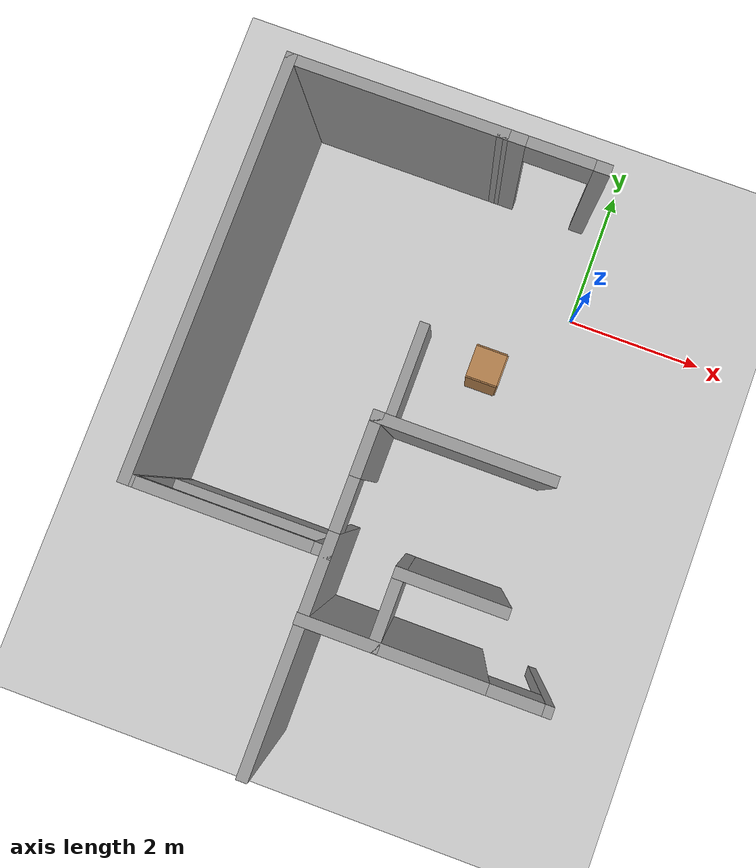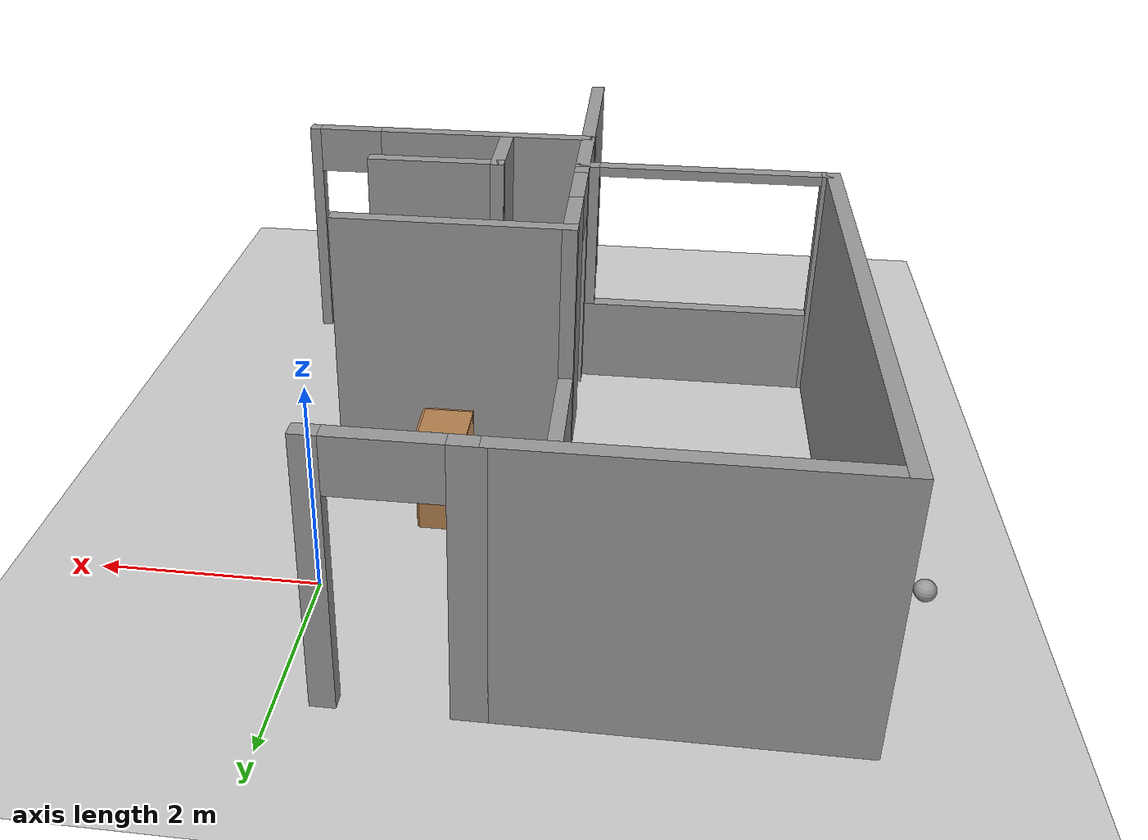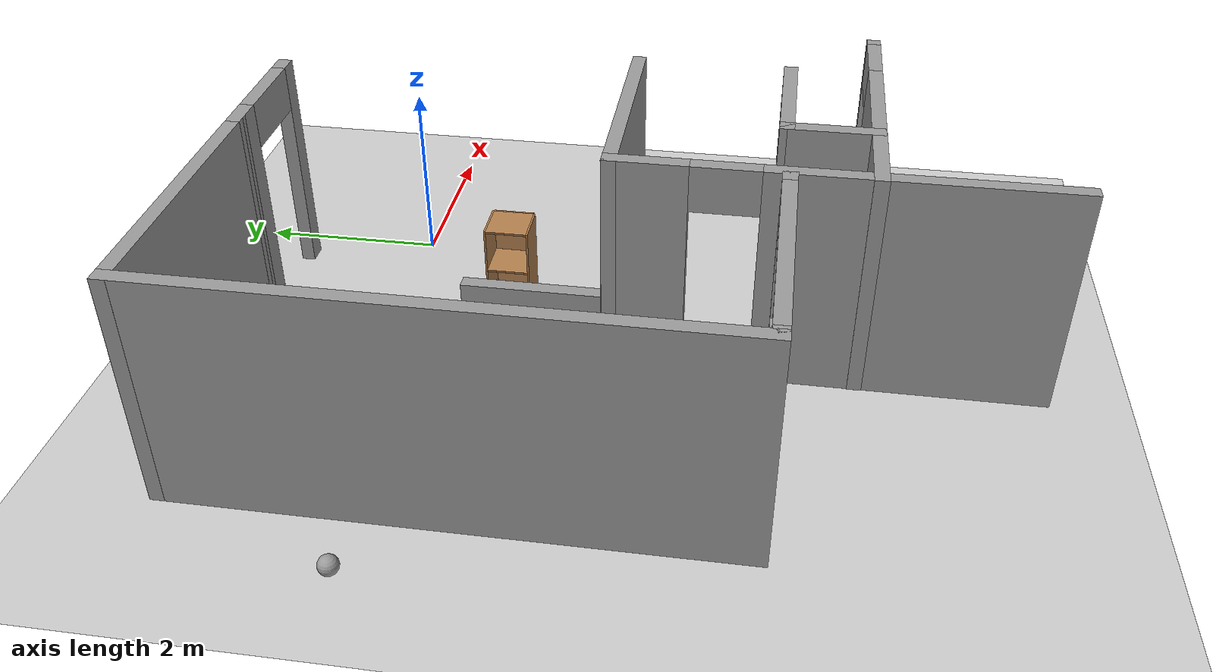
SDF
<sdf version="1.7">
 <world name="default">
  <model name="ground_plane">
   <static>1</static>
   <link name="link">
    <collision name="collision">
     <geometry><plane><normal>0 0 1</normal><size>100 100</size></plane></geometry>
     <surface>
      <contact><collide_bitmask>65535</collide_bitmask></contact>
      <friction><ode><mu>100</mu><mu2>50</mu2></ode></friction>
     </surface>
    </collision>
    <visual name="visual">
     <cast_shadows>0</cast_shadows>
     <geometry><plane><normal>0 0 1</normal><size>100 100</size></plane></geometry>
     <material>
      <script><uri>file://media/materials/scripts/gazebo.material</uri><name>Gazebo/Grey</name></script>
     </material>
    </visual>
   </link>
  </model>
  <model name="Myhouse">
   <link name="Wall_27">
    <pose>-1.25954 -2.94166 0 0 -0 0</pose>
    <visual name="Wall_27_Visual_0">
     <pose>-0.409905 0 1.25 0 -0 0</pose>
     <geometry><box><size>2.43019 0.15 2.5</size></box></geometry>
     <material>
      <script><uri>file://media/materials/scripts/gazebo.material</uri><name>Gazebo/Grey</name></script>
      <ambient>1 1 1 1</ambient>
      <shader type="pixel"/>
     </material>
     <meta><layer>0</layer></meta>
    </visual>
    <visual name="Wall_27_Visual_1">
     <pose>1.56509 0 1.25 0 -0 0</pose>
     <geometry><box><size>0.119811 0.15 2.5</size></box></geometry>
     <material>
      <script><uri>file://media/materials/scripts/gazebo.material</uri><name>Gazebo/Grey</name></script>
      <ambient>1 1 1 1</ambient>
      <shader type="pixel"/>
     </material>
     <meta><layer>0</layer></meta>
    </visual>
    <visual name="Wall_27_Visual_2">
     <pose>1.15519 0 2.25 0 -0 0</pose>
     <geometry><box><size>0.7 0.15 0.5</size></box></geometry>
     <material>
      <script><uri>file://media/materials/scripts/gazebo.material</uri><name>Gazebo/Grey</name></script>
      <ambient>1 1 1 1</ambient>
      <shader type="pixel"/>
     </material>
     <meta><layer>0</layer></meta>
    </visual>
    <collision name="Wall_27_Collision_0">
     <pose>-0.409905 0 1.25 0 -0 0</pose>
     <geometry><box><size>2.43019 0.15 2.5</size></box></geometry>
     <surface>
      <friction>
       <ode><mu>1</mu><mu2>1</mu2><fdir1>0 0 0</fdir1><slip1>0</slip1><slip2>0</slip2></ode>
       <torsional>
        <coefficient>1</coefficient>
        <patch_radius>0</patch_radius>
        <surface_radius>0</surface_radius>
        <use_patch_radius>1</use_patch_radius>
        <ode><slip>0</slip></ode>
       </torsional>
      </friction>
      <bounce><restitution_coefficient>0</restitution_coefficient><threshold>1e+06</threshold></bounce>
      <contact>
       <collide_without_contact>0</collide_without_contact>
       <collide_without_contact_bitmask>1</collide_without_contact_bitmask>
       <collide_bitmask>1</collide_bitmask>
       <ode>
        <soft_cfm>0</soft_cfm>
        <soft_erp>0.2</soft_erp>
        <kp>1e+13</kp>
        <kd>1</kd>
        <max_vel>0.01</max_vel>
        <min_depth>0</min_depth>
       </ode>
       <bullet>
        <split_impulse>1</split_impulse>
        <split_impulse_penetration_threshold>-0.01</split_impulse_penetration_threshold>
        <soft_cfm>0</soft_cfm>
        <soft_erp>0.2</soft_erp>
        <kp>1e+13</kp>
        <kd>1</kd>
       </bullet>
      </contact>
     </surface>
    </collision>
    <collision name="Wall_27_Collision_1">
     <pose>1.56509 0 1.25 0 -0 0</pose>
     <geometry><box><size>0.119811 0.15 2.5</size></box></geometry>
     <surface>
      <friction>
       <ode><mu>1</mu><mu2>1</mu2><fdir1>0 0 0</fdir1><slip1>0</slip1><slip2>0</slip2></ode>
       <torsional>
        <coefficient>1</coefficient>
        <patch_radius>0</patch_radius>
        <surface_radius>0</surface_radius>
        <use_patch_radius>1</use_patch_radius>
        <ode><slip>0</slip></ode>
       </torsional>
      </friction>
      <bounce><restitution_coefficient>0</restitution_coefficient><threshold>1e+06</threshold></bounce>
      <contact>
       <collide_without_contact>0</collide_without_contact>
       <collide_without_contact_bitmask>1</collide_without_contact_bitmask>
       <collide_bitmask>1</collide_bitmask>
       <ode>
        <soft_cfm>0</soft_cfm>
        <soft_erp>0.2</soft_erp>
        <kp>1e+13</kp>
        <kd>1</kd>
        <max_vel>0.01</max_vel>
        <min_depth>0</min_depth>
       </ode>
       <bullet>
        <split_impulse>1</split_impulse>
        <split_impulse_penetration_threshold>-0.01</split_impulse_penetration_threshold>
        <soft_cfm>0</soft_cfm>
        <soft_erp>0.2</soft_erp>
        <kp>1e+13</kp>
        <kd>1</kd>
       </bullet>
      </contact>
     </surface>
    </collision>
    <collision name="Wall_27_Collision_2">
     <pose>1.15519 0 2.25 0 -0 0</pose>
     <geometry><box><size>0.7 0.15 0.5</size></box></geometry>
     <surface>
      <friction>
       <ode><mu>1</mu><mu2>1</mu2><fdir1>0 0 0</fdir1><slip1>0</slip1><slip2>0</slip2></ode>
       <torsional>
        <coefficient>1</coefficient>
        <patch_radius>0</patch_radius>
        <surface_radius>0</surface_radius>
        <use_patch_radius>1</use_patch_radius>
        <ode><slip>0</slip></ode>
       </torsional>
      </friction>
      <bounce><restitution_coefficient>0</restitution_coefficient><threshold>1e+06</threshold></bounce>
      <contact>
       <collide_without_contact>0</collide_without_contact>
       <collide_without_contact_bitmask>1</collide_without_contact_bitmask>
       <collide_bitmask>1</collide_bitmask>
       <ode>
        <soft_cfm>0</soft_cfm>
        <soft_erp>0.2</soft_erp>
        <kp>1e+13</kp>
        <kd>1</kd>
        <max_vel>0.01</max_vel>
        <min_depth>0</min_depth>
       </ode>
       <bullet>
        <split_impulse>1</split_impulse>
        <split_impulse_penetration_threshold>-0.01</split_impulse_penetration_threshold>
        <soft_cfm>0</soft_cfm>
        <soft_erp>0.2</soft_erp>
        <kp>1e+13</kp>
        <kd>1</kd>
       </bullet>
      </contact>
     </surface>
    </collision>
   </link>
   <link name="Wall_34">
    <pose>-1.67392 -0.359359 0 0 -0 3.14115</pose>
    <visual name="Wall_34_Visual">
     <pose>0 0 1.25 0 -0 0</pose>
     <geometry><box><size>2.40523 0.15 2.5</size></box></geometry>
     <material>
      <script><uri>file://media/materials/scripts/gazebo.material</uri><name>Gazebo/Grey</name></script>
      <ambient>1 1 1 1</ambient>
      <shader type="pixel"/>
     </material>
     <meta><layer>0</layer></meta>
    </visual>
    <collision name="Wall_34_Collision">
     <pose>0 0 1.25 0 -0 0</pose>
     <geometry><box><size>2.40523 0.15 2.5</size></box></geometry>
     <surface>
      <friction>
       <ode><mu>1</mu><mu2>1</mu2><fdir1>0 0 0</fdir1><slip1>0</slip1><slip2>0</slip2></ode>
       <torsional>
        <coefficient>1</coefficient>
        <patch_radius>0</patch_radius>
        <surface_radius>0</surface_radius>
        <use_patch_radius>1</use_patch_radius>
        <ode><slip>0</slip></ode>
       </torsional>
      </friction>
      <bounce><restitution_coefficient>0</restitution_coefficient><threshold>1e+06</threshold></bounce>
      <contact>
       <collide_without_contact>0</collide_without_contact>
       <collide_without_contact_bitmask>1</collide_without_contact_bitmask>
       <collide_bitmask>1</collide_bitmask>
       <ode>
        <soft_cfm>0</soft_cfm>
        <soft_erp>0.2</soft_erp>
        <kp>1e+13</kp>
        <kd>1</kd>
        <max_vel>0.01</max_vel>
        <min_depth>0</min_depth>
       </ode>
       <bullet>
        <split_impulse>1</split_impulse>
        <split_impulse_penetration_threshold>-0.01</split_impulse_penetration_threshold>
        <soft_cfm>0</soft_cfm>
        <soft_erp>0.2</soft_erp>
        <kp>1e+13</kp>
        <kd>1</kd>
       </bullet>
      </contact>
     </surface>
    </collision>
   </link>
   <link name="Wall_36">
    <pose>-1.89581 -2.48259 0 0 -0 1.56946</pose>
    <visual name="Wall_36_Visual">
     <pose>0 0 1.25 0 -0 0</pose>
     <geometry><box><size>1.05743 0.15 2.5</size></box></geometry>
     <material>
      <script><uri>file://media/materials/scripts/gazebo.material</uri><name>Gazebo/Grey</name></script>
      <ambient>1 1 1 1</ambient>
      <shader type="pixel"/>
     </material>
     <meta><layer>0</layer></meta>
    </visual>
    <collision name="Wall_36_Collision">
     <pose>0 0 1.25 0 -0 0</pose>
     <geometry><box><size>1.05743 0.15 2.5</size></box></geometry>
     <surface>
      <friction>
       <ode><mu>1</mu><mu2>1</mu2><fdir1>0 0 0</fdir1><slip1>0</slip1><slip2>0</slip2></ode>
       <torsional>
        <coefficient>1</coefficient>
        <patch_radius>0</patch_radius>
        <surface_radius>0</surface_radius>
        <use_patch_radius>1</use_patch_radius>
        <ode><slip>0</slip></ode>
       </torsional>
      </friction>
      <bounce><restitution_coefficient>0</restitution_coefficient><threshold>1e+06</threshold></bounce>
      <contact>
       <collide_without_contact>0</collide_without_contact>
       <collide_without_contact_bitmask>1</collide_without_contact_bitmask>
       <collide_bitmask>1</collide_bitmask>
       <ode>
        <soft_cfm>0</soft_cfm>
        <soft_erp>0.2</soft_erp>
        <kp>1e+13</kp>
        <kd>1</kd>
        <max_vel>0.01</max_vel>
        <min_depth>0</min_depth>
       </ode>
       <bullet>
        <split_impulse>1</split_impulse>
        <split_impulse_penetration_threshold>-0.01</split_impulse_penetration_threshold>
        <soft_cfm>0</soft_cfm>
        <soft_erp>0.2</soft_erp>
        <kp>1e+13</kp>
        <kd>1</kd>
       </bullet>
      </contact>
     </surface>
    </collision>
   </link>
   <link name="Wall_37">
    <pose>-1.23271 -2.03135 0 0 -0 0</pose>
    <visual name="Wall_37_Visual">
     <pose>0 0 1.25 0 -0 0</pose>
     <geometry><box><size>1.475 0.15 2.5</size></box></geometry>
     <material>
      <script><uri>file://media/materials/scripts/gazebo.material</uri><name>Gazebo/Grey</name></script>
      <ambient>1 1 1 1</ambient>
      <shader type="pixel"/>
     </material>
     <meta><layer>0</layer></meta>
    </visual>
    <collision name="Wall_37_Collision">
     <pose>0 0 1.25 0 -0 0</pose>
     <geometry><box><size>1.475 0.15 2.5</size></box></geometry>
     <surface>
      <friction>
       <ode><mu>1</mu><mu2>1</mu2><fdir1>0 0 0</fdir1><slip1>0</slip1><slip2>0</slip2></ode>
       <torsional>
        <coefficient>1</coefficient>
        <patch_radius>0</patch_radius>
        <surface_radius>0</surface_radius>
        <use_patch_radius>1</use_patch_radius>
        <ode><slip>0</slip></ode>
       </torsional>
      </friction>
      <bounce><restitution_coefficient>0</restitution_coefficient><threshold>1e+06</threshold></bounce>
      <contact>
       <collide_without_contact>0</collide_without_contact>
       <collide_without_contact_bitmask>1</collide_without_contact_bitmask>
       <collide_bitmask>1</collide_bitmask>
       <ode>
        <soft_cfm>0</soft_cfm>
        <soft_erp>0.2</soft_erp>
        <kp>1e+13</kp>
        <kd>1</kd>
        <max_vel>0.01</max_vel>
        <min_depth>0</min_depth>
       </ode>
       <bullet>
        <split_impulse>1</split_impulse>
        <split_impulse_penetration_threshold>-0.01</split_impulse_penetration_threshold>
        <soft_cfm>0</soft_cfm>
        <soft_erp>0.2</soft_erp>
        <kp>1e+13</kp>
        <kd>1</kd>
       </bullet>
      </contact>
     </surface>
    </collision>
   </link>
   <link name="Wall_39">
    <pose>-2.80142 0.383496 0 0 -0 1.5708</pose>
    <visual name="Wall_39_Visual">
     <pose>0 0 0.45 0 -0 0</pose>
     <geometry><box><size>1.6304 0.15 0.9</size></box></geometry>
     <material>
      <script><uri>file://media/materials/scripts/gazebo.material</uri><name>Gazebo/Grey</name></script>
      <ambient>1 1 1 1</ambient>
      <shader type="pixel"/>
     </material>
     <meta><layer>0</layer></meta>
    </visual>
    <collision name="Wall_39_Collision">
     <pose>0 0 0.45 0 -0 0</pose>
     <geometry><box><size>1.6304 0.15 0.9</size></box></geometry>
     <surface>
      <friction>
       <ode><mu>1</mu><mu2>1</mu2><fdir1>0 0 0</fdir1><slip1>0</slip1><slip2>0</slip2></ode>
       <torsional>
        <coefficient>1</coefficient>
        <patch_radius>0</patch_radius>
        <surface_radius>0</surface_radius>
        <use_patch_radius>1</use_patch_radius>
        <ode><slip>0</slip></ode>
       </torsional>
      </friction>
      <bounce><restitution_coefficient>0</restitution_coefficient><threshold>1e+06</threshold></bounce>
      <contact>
       <collide_without_contact>0</collide_without_contact>
       <collide_without_contact_bitmask>1</collide_without_contact_bitmask>
       <collide_bitmask>1</collide_bitmask>
       <ode>
        <soft_cfm>0</soft_cfm>
        <soft_erp>0.2</soft_erp>
        <kp>1e+13</kp>
        <kd>1</kd>
        <max_vel>0.01</max_vel>
        <min_depth>0</min_depth>
       </ode>
       <bullet>
        <split_impulse>1</split_impulse>
        <split_impulse_penetration_threshold>-0.01</split_impulse_penetration_threshold>
        <soft_cfm>0</soft_cfm>
        <soft_erp>0.2</soft_erp>
        <kp>1e+13</kp>
        <kd>1</kd>
       </bullet>
      </contact>
     </surface>
    </collision>
   </link>
   <link name="Wall_43">
    <pose>-5.40164 0.709209 0 0 0 -1.5708</pose>
    <visual name="Wall_43_Visual">
     <pose>0 0 1.25 0 -0 0</pose>
     <geometry><box><size>5.75 0.15 2.5</size></box></geometry>
     <material>
      <script><uri>file://media/materials/scripts/gazebo.material</uri><name>Gazebo/Grey</name></script>
      <ambient>1 1 1 1</ambient>
      <shader type="pixel"/>
     </material>
     <meta><layer>0</layer></meta>
    </visual>
    <collision name="Wall_43_Collision">
     <pose>0 0 1.25 0 -0 0</pose>
     <geometry><box><size>5.75 0.15 2.5</size></box></geometry>
     <surface>
      <friction>
       <ode><mu>1</mu><mu2>1</mu2><fdir1>0 0 0</fdir1><slip1>0</slip1><slip2>0</slip2></ode>
       <torsional>
        <coefficient>1</coefficient>
        <patch_radius>0</patch_radius>
        <surface_radius>0</surface_radius>
        <use_patch_radius>1</use_patch_radius>
        <ode><slip>0</slip></ode>
       </torsional>
      </friction>
      <bounce><restitution_coefficient>0</restitution_coefficient><threshold>1e+06</threshold></bounce>
      <contact>
       <collide_without_contact>0</collide_without_contact>
       <collide_without_contact_bitmask>1</collide_without_contact_bitmask>
       <collide_bitmask>1</collide_bitmask>
       <ode>
        <soft_cfm>0</soft_cfm>
        <soft_erp>0.2</soft_erp>
        <kp>1e+13</kp>
        <kd>1</kd>
        <max_vel>0.01</max_vel>
        <min_depth>0</min_depth>
       </ode>
       <bullet>
        <split_impulse>1</split_impulse>
        <split_impulse_penetration_threshold>-0.01</split_impulse_penetration_threshold>
        <soft_cfm>0</soft_cfm>
        <soft_erp>0.2</soft_erp>
        <kp>1e+13</kp>
        <kd>1</kd>
       </bullet>
      </contact>
     </surface>
    </collision>
   </link>
   <link name="Wall_44">
    <pose>-4.10164 -2.09079 0 0 -0 0</pose>
    <visual name="Wall_44_Visual_1">
     <pose>0.097362 0 0.45 0 -0 0</pose>
     <geometry><box><size>2.55528 0.15 0.9</size></box></geometry>
     <material>
      <script><uri>file://media/materials/scripts/gazebo.material</uri><name>Gazebo/Grey</name></script>
      <ambient>1 1 1 1</ambient>
      <shader type="pixel"/>
     </material>
     <meta><layer>0</layer></meta>
    </visual>
    <visual name="Wall_44_Visual_0">
     <pose>-1.27764 0 1.25 0 -0 0</pose>
     <geometry><box><size>0.194724 0.15 2.5</size></box></geometry>
     <material>
      <script><uri>file://media/materials/scripts/gazebo.material</uri><name>Gazebo/Grey</name></script>
      <ambient>1 1 1 1</ambient>
      <shader type="pixel"/>
     </material>
     <meta><layer>0</layer></meta>
    </visual>
    <visual name="Wall_44_Visual_3">
     <pose>-0.030276 0 2.45 0 -0 0</pose>
     <geometry><box><size>2.3 0.15 0.1</size></box></geometry>
     <material>
      <script><uri>file://media/materials/scripts/gazebo.material</uri><name>Gazebo/Grey</name></script>
      <ambient>1 1 1 1</ambient>
      <shader type="pixel"/>
     </material>
     <meta><layer>0</layer></meta>
    </visual>
    <visual name="Wall_44_Visual_2">
     <pose>1.24736 0 1.7 0 -0 0</pose>
     <geometry><box><size>0.255276 0.15 1.6</size></box></geometry>
     <material>
      <script><uri>file://media/materials/scripts/gazebo.material</uri><name>Gazebo/Grey</name></script>
      <ambient>1 1 1 1</ambient>
      <shader type="pixel"/>
     </material>
     <meta><layer>0</layer></meta>
    </visual>
    <collision name="Wall_44_Collision_0">
     <pose>-1.27764 0 1.25 0 -0 0</pose>
     <geometry><box><size>0.194724 0.15 2.5</size></box></geometry>
     <surface>
      <friction>
       <ode><mu>1</mu><mu2>1</mu2><fdir1>0 0 0</fdir1><slip1>0</slip1><slip2>0</slip2></ode>
       <torsional>
        <coefficient>1</coefficient>
        <patch_radius>0</patch_radius>
        <surface_radius>0</surface_radius>
        <use_patch_radius>1</use_patch_radius>
        <ode><slip>0</slip></ode>
       </torsional>
      </friction>
      <bounce><restitution_coefficient>0</restitution_coefficient><threshold>1e+06</threshold></bounce>
      <contact>
       <collide_without_contact>0</collide_without_contact>
       <collide_without_contact_bitmask>1</collide_without_contact_bitmask>
       <collide_bitmask>1</collide_bitmask>
       <ode>
        <soft_cfm>0</soft_cfm>
        <soft_erp>0.2</soft_erp>
        <kp>1e+13</kp>
        <kd>1</kd>
        <max_vel>0.01</max_vel>
        <min_depth>0</min_depth>
       </ode>
       <bullet>
        <split_impulse>1</split_impulse>
        <split_impulse_penetration_threshold>-0.01</split_impulse_penetration_threshold>
        <soft_cfm>0</soft_cfm>
        <soft_erp>0.2</soft_erp>
        <kp>1e+13</kp>
        <kd>1</kd>
       </bullet>
      </contact>
     </surface>
    </collision>
    <collision name="Wall_44_Collision_1">
     <pose>0.097362 0 0.45 0 -0 0</pose>
     <geometry><box><size>2.55528 0.15 0.9</size></box></geometry>
     <surface>
      <friction>
       <ode><mu>1</mu><mu2>1</mu2><fdir1>0 0 0</fdir1><slip1>0</slip1><slip2>0</slip2></ode>
       <torsional>
        <coefficient>1</coefficient>
        <patch_radius>0</patch_radius>
        <surface_radius>0</surface_radius>
        <use_patch_radius>1</use_patch_radius>
        <ode><slip>0</slip></ode>
       </torsional>
      </friction>
      <bounce><restitution_coefficient>0</restitution_coefficient><threshold>1e+06</threshold></bounce>
      <contact>
       <collide_without_contact>0</collide_without_contact>
       <collide_without_contact_bitmask>1</collide_without_contact_bitmask>
       <collide_bitmask>1</collide_bitmask>
       <ode>
        <soft_cfm>0</soft_cfm>
        <soft_erp>0.2</soft_erp>
        <kp>1e+13</kp>
        <kd>1</kd>
        <max_vel>0.01</max_vel>
        <min_depth>0</min_depth>
       </ode>
       <bullet>
        <split_impulse>1</split_impulse>
        <split_impulse_penetration_threshold>-0.01</split_impulse_penetration_threshold>
        <soft_cfm>0</soft_cfm>
        <soft_erp>0.2</soft_erp>
        <kp>1e+13</kp>
        <kd>1</kd>
       </bullet>
      </contact>
     </surface>
    </collision>
    <collision name="Wall_44_Collision_2">
     <pose>1.24736 0 1.7 0 -0 0</pose>
     <geometry><box><size>0.255276 0.15 1.6</size></box></geometry>
     <surface>
      <friction>
       <ode><mu>1</mu><mu2>1</mu2><fdir1>0 0 0</fdir1><slip1>0</slip1><slip2>0</slip2></ode>
       <torsional>
        <coefficient>1</coefficient>
        <patch_radius>0</patch_radius>
        <surface_radius>0</surface_radius>
        <use_patch_radius>1</use_patch_radius>
        <ode><slip>0</slip></ode>
       </torsional>
      </friction>
      <bounce><restitution_coefficient>0</restitution_coefficient><threshold>1e+06</threshold></bounce>
      <contact>
       <collide_without_contact>0</collide_without_contact>
       <collide_without_contact_bitmask>1</collide_without_contact_bitmask>
       <collide_bitmask>1</collide_bitmask>
       <ode>
        <soft_cfm>0</soft_cfm>
        <soft_erp>0.2</soft_erp>
        <kp>1e+13</kp>
        <kd>1</kd>
        <max_vel>0.01</max_vel>
        <min_depth>0</min_depth>
       </ode>
       <bullet>
        <split_impulse>1</split_impulse>
        <split_impulse_penetration_threshold>-0.01</split_impulse_penetration_threshold>
        <soft_cfm>0</soft_cfm>
        <soft_erp>0.2</soft_erp>
        <kp>1e+13</kp>
        <kd>1</kd>
       </bullet>
      </contact>
     </surface>
    </collision>
    <collision name="Wall_44_Collision_3">
     <pose>-0.030276 0 2.45 0 -0 0</pose>
     <geometry><box><size>2.3 0.15 0.1</size></box></geometry>
     <surface>
      <friction>
       <ode><mu>1</mu><mu2>1</mu2><fdir1>0 0 0</fdir1><slip1>0</slip1><slip2>0</slip2></ode>
       <torsional>
        <coefficient>1</coefficient>
        <patch_radius>0</patch_radius>
        <surface_radius>0</surface_radius>
        <use_patch_radius>1</use_patch_radius>
        <ode><slip>0</slip></ode>
       </torsional>
      </friction>
      <bounce><restitution_coefficient>0</restitution_coefficient><threshold>1e+06</threshold></bounce>
      <contact>
       <collide_without_contact>0</collide_without_contact>
       <collide_without_contact_bitmask>1</collide_without_contact_bitmask>
       <collide_bitmask>1</collide_bitmask>
       <ode>
        <soft_cfm>0</soft_cfm>
        <soft_erp>0.2</soft_erp>
        <kp>1e+13</kp>
        <kd>1</kd>
        <max_vel>0.01</max_vel>
        <min_depth>0</min_depth>
       </ode>
       <bullet>
        <split_impulse>1</split_impulse>
        <split_impulse_penetration_threshold>-0.01</split_impulse_penetration_threshold>
        <soft_cfm>0</soft_cfm>
        <soft_erp>0.2</soft_erp>
        <kp>1e+13</kp>
        <kd>1</kd>
       </bullet>
      </contact>
     </surface>
    </collision>
   </link>
   <link name="Wall_49">
    <pose>-3.97664 3.50921 0 0 -0 0</pose>
    <visual name="Wall_49_Visual">
     <pose>0 0 1.25 0 -0 0</pose>
     <geometry><box><size>3 0.15 2.5</size></box></geometry>
     <material>
      <script><uri>file://media/materials/scripts/gazebo.material</uri><name>Gazebo/Grey</name></script>
      <ambient>1 1 1 1</ambient>
      <shader type="pixel"/>
     </material>
     <meta><layer>0</layer></meta>
    </visual>
    <collision name="Wall_49_Collision">
     <pose>0 0 1.25 0 -0 0</pose>
     <geometry><box><size>3 0.15 2.5</size></box></geometry>
     <surface>
      <friction>
       <ode><mu>1</mu><mu2>1</mu2><fdir1>0 0 0</fdir1><slip1>0</slip1><slip2>0</slip2></ode>
       <torsional>
        <coefficient>1</coefficient>
        <patch_radius>0</patch_radius>
        <surface_radius>0</surface_radius>
        <use_patch_radius>1</use_patch_radius>
        <ode><slip>0</slip></ode>
       </torsional>
      </friction>
      <bounce><restitution_coefficient>0</restitution_coefficient><threshold>1e+06</threshold></bounce>
      <contact>
       <collide_without_contact>0</collide_without_contact>
       <collide_without_contact_bitmask>1</collide_without_contact_bitmask>
       <collide_bitmask>1</collide_bitmask>
       <ode>
        <soft_cfm>0</soft_cfm>
        <soft_erp>0.2</soft_erp>
        <kp>1e+13</kp>
        <kd>1</kd>
        <max_vel>0.01</max_vel>
        <min_depth>0</min_depth>
       </ode>
       <bullet>
        <split_impulse>1</split_impulse>
        <split_impulse_penetration_threshold>-0.01</split_impulse_penetration_threshold>
        <soft_cfm>0</soft_cfm>
        <soft_erp>0.2</soft_erp>
        <kp>1e+13</kp>
        <kd>1</kd>
       </bullet>
      </contact>
     </surface>
    </collision>
   </link>
   <link name="Wall_50">
    <pose>-1.87653 3.50945 0 0 -0 0.000362</pose>
    <visual name="Wall_50_Visual_0">
     <pose>-0.558724 0 1.25 0 -0 0</pose>
     <geometry><box><size>0.382552 0.15 2.5</size></box></geometry>
     <material>
      <script><uri>file://media/materials/scripts/gazebo.material</uri><name>Gazebo/Grey</name></script>
      <ambient>1 1 1 1</ambient>
      <shader type="pixel"/>
     </material>
     <meta><layer>0</layer></meta>
    </visual>
    <visual name="Wall_50_Visual_1">
     <pose>0.641276 0 1.25 0 -0 0</pose>
     <geometry><box><size>0.217448 0.15 2.5</size></box></geometry>
     <material>
      <script><uri>file://media/materials/scripts/gazebo.material</uri><name>Gazebo/Grey</name></script>
      <ambient>1 1 1 1</ambient>
      <shader type="pixel"/>
     </material>
     <meta><layer>0</layer></meta>
    </visual>
    <visual name="Wall_50_Visual_2">
     <pose>0.082552 0 2.25 0 -0 0</pose>
     <geometry><box><size>0.9 0.15 0.5</size></box></geometry>
     <material>
      <script><uri>file://media/materials/scripts/gazebo.material</uri><name>Gazebo/Grey</name></script>
      <ambient>1 1 1 1</ambient>
      <shader type="pixel"/>
     </material>
     <meta><layer>0</layer></meta>
    </visual>
    <collision name="Wall_50_Collision_0">
     <pose>-0.558724 0 1.25 0 -0 0</pose>
     <geometry><box><size>0.382552 0.15 2.5</size></box></geometry>
     <surface>
      <friction>
       <ode><mu>1</mu><mu2>1</mu2><fdir1>0 0 0</fdir1><slip1>0</slip1><slip2>0</slip2></ode>
       <torsional>
        <coefficient>1</coefficient>
        <patch_radius>0</patch_radius>
        <surface_radius>0</surface_radius>
        <use_patch_radius>1</use_patch_radius>
        <ode><slip>0</slip></ode>
       </torsional>
      </friction>
      <bounce><restitution_coefficient>0</restitution_coefficient><threshold>1e+06</threshold></bounce>
      <contact>
       <collide_without_contact>0</collide_without_contact>
       <collide_without_contact_bitmask>1</collide_without_contact_bitmask>
       <collide_bitmask>1</collide_bitmask>
       <ode>
        <soft_cfm>0</soft_cfm>
        <soft_erp>0.2</soft_erp>
        <kp>1e+13</kp>
        <kd>1</kd>
        <max_vel>0.01</max_vel>
        <min_depth>0</min_depth>
       </ode>
       <bullet>
        <split_impulse>1</split_impulse>
        <split_impulse_penetration_threshold>-0.01</split_impulse_penetration_threshold>
        <soft_cfm>0</soft_cfm>
        <soft_erp>0.2</soft_erp>
        <kp>1e+13</kp>
        <kd>1</kd>
       </bullet>
      </contact>
     </surface>
    </collision>
    <collision name="Wall_50_Collision_2">
     <pose>0.082552 0 2.25 0 -0 0</pose>
     <geometry><box><size>0.9 0.15 0.5</size></box></geometry>
     <surface>
      <friction>
       <ode><mu>1</mu><mu2>1</mu2><fdir1>0 0 0</fdir1><slip1>0</slip1><slip2>0</slip2></ode>
       <torsional>
        <coefficient>1</coefficient>
        <patch_radius>0</patch_radius>
        <surface_radius>0</surface_radius>
        <use_patch_radius>1</use_patch_radius>
        <ode><slip>0</slip></ode>
       </torsional>
      </friction>
      <bounce><restitution_coefficient>0</restitution_coefficient><threshold>1e+06</threshold></bounce>
      <contact>
       <collide_without_contact>0</collide_without_contact>
       <collide_without_contact_bitmask>1</collide_without_contact_bitmask>
       <collide_bitmask>1</collide_bitmask>
       <ode>
        <soft_cfm>0</soft_cfm>
        <soft_erp>0.2</soft_erp>
        <kp>1e+13</kp>
        <kd>1</kd>
        <max_vel>0.01</max_vel>
        <min_depth>0</min_depth>
       </ode>
       <bullet>
        <split_impulse>1</split_impulse>
        <split_impulse_penetration_threshold>-0.01</split_impulse_penetration_threshold>
        <soft_cfm>0</soft_cfm>
        <soft_erp>0.2</soft_erp>
        <kp>1e+13</kp>
        <kd>1</kd>
       </bullet>
      </contact>
     </surface>
    </collision>
    <collision name="Wall_50_Collision_1">
     <pose>0.641276 0 1.25 0 -0 0</pose>
     <geometry><box><size>0.217448 0.15 2.5</size></box></geometry>
     <surface>
      <friction>
       <ode><mu>1</mu><mu2>1</mu2><fdir1>0 0 0</fdir1><slip1>0</slip1><slip2>0</slip2></ode>
       <torsional>
        <coefficient>1</coefficient>
        <patch_radius>0</patch_radius>
        <surface_radius>0</surface_radius>
        <use_patch_radius>1</use_patch_radius>
        <ode><slip>0</slip></ode>
       </torsional>
      </friction>
      <bounce><restitution_coefficient>0</restitution_coefficient><threshold>1e+06</threshold></bounce>
      <contact>
       <collide_without_contact>0</collide_without_contact>
       <collide_without_contact_bitmask>1</collide_without_contact_bitmask>
       <collide_bitmask>1</collide_bitmask>
       <ode>
        <soft_cfm>0</soft_cfm>
        <soft_erp>0.2</soft_erp>
        <kp>1e+13</kp>
        <kd>1</kd>
        <max_vel>0.01</max_vel>
        <min_depth>0</min_depth>
       </ode>
       <bullet>
        <split_impulse>1</split_impulse>
        <split_impulse_penetration_threshold>-0.01</split_impulse_penetration_threshold>
        <soft_cfm>0</soft_cfm>
        <soft_erp>0.2</soft_erp>
        <kp>1e+13</kp>
        <kd>1</kd>
       </bullet>
      </contact>
     </surface>
    </collision>
   </link>
   <link name="Wall_8">
    <pose>-2.80153 -2.59875 0 0 -0 1.57075</pose>
    <visual name="Wall_8_Visual_0">
     <pose>-0.776988 0 1.25 0 -0 0</pose>
     <geometry><box><size>3.08011 0.15 2.5</size></box></geometry>
     <material>
      <script><uri>file://media/materials/scripts/gazebo.material</uri><name>Gazebo/Grey</name></script>
      <ambient>1 1 1 1</ambient>
      <shader type="pixel"/>
     </material>
     <meta><layer>0</layer></meta>
    </visual>
    <visual name="Wall_8_Visual_1">
     <pose>1.89006 0 1.25 0 -0 0</pose>
     <geometry><box><size>0.853976 0.15 2.5</size></box></geometry>
     <material>
      <script><uri>file://media/materials/scripts/gazebo.material</uri><name>Gazebo/Grey</name></script>
      <ambient>1 1 1 1</ambient>
      <shader type="pixel"/>
     </material>
     <meta><layer>0</layer></meta>
    </visual>
    <visual name="Wall_8_Visual_2">
     <pose>1.11307 0 2.25 0 -0 0</pose>
     <geometry><box><size>0.7 0.15 0.5</size></box></geometry>
     <material>
      <script><uri>file://media/materials/scripts/gazebo.material</uri><name>Gazebo/Grey</name></script>
      <ambient>1 1 1 1</ambient>
      <shader type="pixel"/>
     </material>
     <meta><layer>0</layer></meta>
    </visual>
    <collision name="Wall_8_Collision_2">
     <pose>1.11307 0 2.25 0 -0 0</pose>
     <geometry><box><size>0.7 0.15 0.5</size></box></geometry>
     <surface>
      <friction>
       <ode><mu>1</mu><mu2>1</mu2><fdir1>0 0 0</fdir1><slip1>0</slip1><slip2>0</slip2></ode>
       <torsional>
        <coefficient>1</coefficient>
        <patch_radius>0</patch_radius>
        <surface_radius>0</surface_radius>
        <use_patch_radius>1</use_patch_radius>
        <ode><slip>0</slip></ode>
       </torsional>
      </friction>
      <bounce><restitution_coefficient>0</restitution_coefficient><threshold>1e+06</threshold></bounce>
      <contact>
       <collide_without_contact>0</collide_without_contact>
       <collide_without_contact_bitmask>1</collide_without_contact_bitmask>
       <collide_bitmask>1</collide_bitmask>
       <ode>
        <soft_cfm>0</soft_cfm>
        <soft_erp>0.2</soft_erp>
        <kp>1e+13</kp>
        <kd>1</kd>
        <max_vel>0.01</max_vel>
        <min_depth>0</min_depth>
       </ode>
       <bullet>
        <split_impulse>1</split_impulse>
        <split_impulse_penetration_threshold>-0.01</split_impulse_penetration_threshold>
        <soft_cfm>0</soft_cfm>
        <soft_erp>0.2</soft_erp>
        <kp>1e+13</kp>
        <kd>1</kd>
       </bullet>
      </contact>
     </surface>
    </collision>
    <collision name="Wall_8_Collision_0">
     <pose>-0.776988 0 1.25 0 -0 0</pose>
     <geometry><box><size>3.08011 0.15 2.5</size></box></geometry>
     <surface>
      <friction>
       <ode><mu>1</mu><mu2>1</mu2><fdir1>0 0 0</fdir1><slip1>0</slip1><slip2>0</slip2></ode>
       <torsional>
        <coefficient>1</coefficient>
        <patch_radius>0</patch_radius>
        <surface_radius>0</surface_radius>
        <use_patch_radius>1</use_patch_radius>
        <ode><slip>0</slip></ode>
       </torsional>
      </friction>
      <bounce><restitution_coefficient>0</restitution_coefficient><threshold>1e+06</threshold></bounce>
      <contact>
       <collide_without_contact>0</collide_without_contact>
       <collide_without_contact_bitmask>1</collide_without_contact_bitmask>
       <collide_bitmask>1</collide_bitmask>
       <ode>
        <soft_cfm>0</soft_cfm>
        <soft_erp>0.2</soft_erp>
        <kp>1e+13</kp>
        <kd>1</kd>
        <max_vel>0.01</max_vel>
        <min_depth>0</min_depth>
       </ode>
       <bullet>
        <split_impulse>1</split_impulse>
        <split_impulse_penetration_threshold>-0.01</split_impulse_penetration_threshold>
        <soft_cfm>0</soft_cfm>
        <soft_erp>0.2</soft_erp>
        <kp>1e+13</kp>
        <kd>1</kd>
       </bullet>
      </contact>
     </surface>
    </collision>
    <collision name="Wall_8_Collision_1">
     <pose>1.89006 0 1.25 0 -0 0</pose>
     <geometry><box><size>0.853976 0.15 2.5</size></box></geometry>
     <surface>
      <friction>
       <ode><mu>1</mu><mu2>1</mu2><fdir1>0 0 0</fdir1><slip1>0</slip1><slip2>0</slip2></ode>
       <torsional>
        <coefficient>1</coefficient>
        <patch_radius>0</patch_radius>
        <surface_radius>0</surface_radius>
        <use_patch_radius>1</use_patch_radius>
        <ode><slip>0</slip></ode>
       </torsional>
      </friction>
      <bounce><restitution_coefficient>0</restitution_coefficient><threshold>1e+06</threshold></bounce>
      <contact>
       <collide_without_contact>0</collide_without_contact>
       <collide_without_contact_bitmask>1</collide_without_contact_bitmask>
       <collide_bitmask>1</collide_bitmask>
       <ode>
        <soft_cfm>0</soft_cfm>
        <soft_erp>0.2</soft_erp>
        <kp>1e+13</kp>
        <kd>1</kd>
        <max_vel>0.01</max_vel>
        <min_depth>0</min_depth>
       </ode>
       <bullet>
        <split_impulse>1</split_impulse>
        <split_impulse_penetration_threshold>-0.01</split_impulse_penetration_threshold>
        <soft_cfm>0</soft_cfm>
        <soft_erp>0.2</soft_erp>
        <kp>1e+13</kp>
        <kd>1</kd>
       </bullet>
      </contact>
     </surface>
    </collision>
   </link>
   <static>1</static>
   <pose>0.84061 -2.10852 0 0 -0 0</pose>
  </model>
  <model name="cabinet_clone_1">
   <link name="cabinet_bottom_plate">
    <inertial>
     <pose>0 0 -1 0 -0 0</pose>
     <inertia><ixx>2.05</ixx><ixy>0</ixy><ixz>0</ixz><iyy>2.05</iyy><iyz>0</iyz><izz>2.05</izz></inertia>
     <mass>25</mass>
    </inertial>
    <visual name="cabinet_bottom_plate_geom_cabinet_middle_plate_visual">
     <pose>0 0 0.51 0 -0 0</pose>
     <geometry><box><size>0.45 0.45 0.02</size></box></geometry>
     <material>
      <script><uri>file://media/materials/scripts/gazebo.material</uri><name>Gazebo/Wood</name></script>
      <shader type="pixel"/>
     </material>
    </visual>
    <visual name="cabinet_bottom_plate_geom_visual">
     <pose>0 0 0.01 0 -0 0</pose>
     <geometry><box><size>0.45 0.45 0.02</size></box></geometry>
     <material>
      <script><uri>file://media/materials/scripts/gazebo.material</uri><name>Gazebo/Wood</name></script>
      <shader type="pixel"/>
     </material>
    </visual>
    <visual name="cabinet_bottom_plate_geom_cabinet_right_plate_visual">
     <pose>0 -0.235 0.51 0 -0 0</pose>
     <geometry><box><size>0.45 0.02 1.02</size></box></geometry>
     <material>
      <script><uri>file://media/materials/scripts/gazebo.material</uri><name>Gazebo/Wood</name></script>
      <shader type="pixel"/>
     </material>
    </visual>
    <visual name="cabinet_bottom_plate_geom_cabinet_top_plate_visual">
     <pose>0 0 1.01 0 -0 0</pose>
     <geometry><box><size>0.45 0.45 0.02</size></box></geometry>
     <material>
      <script><uri>file://media/materials/scripts/gazebo.material</uri><name>Gazebo/Wood</name></script>
      <shader type="pixel"/>
     </material>
    </visual>
    <visual name="cabinet_bottom_plate_geom_cabinet_left_plate_visual">
     <pose>0 0.235 0.51 0 -0 0</pose>
     <geometry><box><size>0.45 0.02 1.02</size></box></geometry>
     <material>
      <script><uri>file://media/materials/scripts/gazebo.material</uri><name>Gazebo/Wood</name></script>
      <shader type="pixel"/>
     </material>
    </visual>
    <visual name="cabinet_bottom_plate_geom_cabinet_back_plate_visual">
     <pose>0.235 0 0.51 0 -0 0</pose>
     <geometry><box><size>0.02 0.45 1.02</size></box></geometry>
     <material>
      <script><uri>file://media/materials/scripts/gazebo.material</uri><name>Gazebo/Wood</name></script>
      <shader type="pixel"/>
     </material>
    </visual>
    <collision name="cabinet_bottom_plate_geom_cabinet_top_plate">
     <pose>0 0 1.01 0 -0 0</pose>
     <geometry><box><size>0.45 0.45 0.02</size></box></geometry>
     <surface>
      <friction>
       <ode><mu>1</mu><mu2>1</mu2><fdir1>0 0 0</fdir1><slip1>0</slip1><slip2>0</slip2></ode>
       <torsional>
        <coefficient>1</coefficient>
        <patch_radius>0</patch_radius>
        <surface_radius>0</surface_radius>
        <use_patch_radius>1</use_patch_radius>
        <ode><slip>0</slip></ode>
       </torsional>
      </friction>
      <bounce><restitution_coefficient>0</restitution_coefficient><threshold>1e+06</threshold></bounce>
      <contact>
       <collide_without_contact>0</collide_without_contact>
       <collide_without_contact_bitmask>1</collide_without_contact_bitmask>
       <collide_bitmask>1</collide_bitmask>
       <ode>
        <soft_cfm>0</soft_cfm>
        <soft_erp>0.2</soft_erp>
        <kp>1e+13</kp>
        <kd>1</kd>
        <max_vel>0.01</max_vel>
        <min_depth>0</min_depth>
       </ode>
       <bullet>
        <split_impulse>1</split_impulse>
        <split_impulse_penetration_threshold>-0.01</split_impulse_penetration_threshold>
        <soft_cfm>0</soft_cfm>
        <soft_erp>0.2</soft_erp>
        <kp>1e+13</kp>
        <kd>1</kd>
       </bullet>
      </contact>
     </surface>
    </collision>
    <collision name="cabinet_bottom_plate_geom">
     <pose>0 0 0.01 0 -0 0</pose>
     <geometry><box><size>0.45 0.45 0.02</size></box></geometry>
     <surface>
      <friction>
       <ode><mu>1</mu><mu2>1</mu2><fdir1>0 0 0</fdir1><slip1>0</slip1><slip2>0</slip2></ode>
       <torsional>
        <coefficient>1</coefficient>
        <patch_radius>0</patch_radius>
        <surface_radius>0</surface_radius>
        <use_patch_radius>1</use_patch_radius>
        <ode><slip>0</slip></ode>
       </torsional>
      </friction>
      <bounce><restitution_coefficient>0</restitution_coefficient><threshold>1e+06</threshold></bounce>
      <contact>
       <collide_without_contact>0</collide_without_contact>
       <collide_without_contact_bitmask>1</collide_without_contact_bitmask>
       <collide_bitmask>1</collide_bitmask>
       <ode>
        <soft_cfm>0</soft_cfm>
        <soft_erp>0.2</soft_erp>
        <kp>1e+13</kp>
        <kd>1</kd>
        <max_vel>0.01</max_vel>
        <min_depth>0</min_depth>
       </ode>
       <bullet>
        <split_impulse>1</split_impulse>
        <split_impulse_penetration_threshold>-0.01</split_impulse_penetration_threshold>
        <soft_cfm>0</soft_cfm>
        <soft_erp>0.2</soft_erp>
        <kp>1e+13</kp>
        <kd>1</kd>
       </bullet>
      </contact>
     </surface>
    </collision>
    <collision name="cabinet_bottom_plate_geom_cabinet_middle_plate">
     <pose>0 0 0.51 0 -0 0</pose>
     <geometry><box><size>0.45 0.45 0.02</size></box></geometry>
     <surface>
      <friction>
       <ode><mu>1</mu><mu2>1</mu2><fdir1>0 0 0</fdir1><slip1>0</slip1><slip2>0</slip2></ode>
       <torsional>
        <coefficient>1</coefficient>
        <patch_radius>0</patch_radius>
        <surface_radius>0</surface_radius>
        <use_patch_radius>1</use_patch_radius>
        <ode><slip>0</slip></ode>
       </torsional>
      </friction>
      <bounce><restitution_coefficient>0</restitution_coefficient><threshold>1e+06</threshold></bounce>
      <contact>
       <collide_without_contact>0</collide_without_contact>
       <collide_without_contact_bitmask>1</collide_without_contact_bitmask>
       <collide_bitmask>1</collide_bitmask>
       <ode>
        <soft_cfm>0</soft_cfm>
        <soft_erp>0.2</soft_erp>
        <kp>1e+13</kp>
        <kd>1</kd>
        <max_vel>0.01</max_vel>
        <min_depth>0</min_depth>
       </ode>
       <bullet>
        <split_impulse>1</split_impulse>
        <split_impulse_penetration_threshold>-0.01</split_impulse_penetration_threshold>
        <soft_cfm>0</soft_cfm>
        <soft_erp>0.2</soft_erp>
        <kp>1e+13</kp>
        <kd>1</kd>
       </bullet>
      </contact>
     </surface>
    </collision>
    <collision name="cabinet_bottom_plate_geom_cabinet_right_plate">
     <pose>0 -0.235 0.51 0 -0 0</pose>
     <geometry><box><size>0.45 0.02 1.02</size></box></geometry>
     <surface>
      <friction>
       <ode><mu>1</mu><mu2>1</mu2><fdir1>0 0 0</fdir1><slip1>0</slip1><slip2>0</slip2></ode>
       <torsional>
        <coefficient>1</coefficient>
        <patch_radius>0</patch_radius>
        <surface_radius>0</surface_radius>
        <use_patch_radius>1</use_patch_radius>
        <ode><slip>0</slip></ode>
       </torsional>
      </friction>
      <bounce><restitution_coefficient>0</restitution_coefficient><threshold>1e+06</threshold></bounce>
      <contact>
       <collide_without_contact>0</collide_without_contact>
       <collide_without_contact_bitmask>1</collide_without_contact_bitmask>
       <collide_bitmask>1</collide_bitmask>
       <ode>
        <soft_cfm>0</soft_cfm>
        <soft_erp>0.2</soft_erp>
        <kp>1e+13</kp>
        <kd>1</kd>
        <max_vel>0.01</max_vel>
        <min_depth>0</min_depth>
       </ode>
       <bullet>
        <split_impulse>1</split_impulse>
        <split_impulse_penetration_threshold>-0.01</split_impulse_penetration_threshold>
        <soft_cfm>0</soft_cfm>
        <soft_erp>0.2</soft_erp>
        <kp>1e+13</kp>
        <kd>1</kd>
       </bullet>
      </contact>
     </surface>
    </collision>
    <collision name="cabinet_bottom_plate_geom_cabinet_left_plate">
     <pose>0 0.235 0.51 0 -0 0</pose>
     <geometry><box><size>0.45 0.02 1.02</size></box></geometry>
     <surface>
      <friction>
       <ode><mu>1</mu><mu2>1</mu2><fdir1>0 0 0</fdir1><slip1>0</slip1><slip2>0</slip2></ode>
       <torsional>
        <coefficient>1</coefficient>
        <patch_radius>0</patch_radius>
        <surface_radius>0</surface_radius>
        <use_patch_radius>1</use_patch_radius>
        <ode><slip>0</slip></ode>
       </torsional>
      </friction>
      <bounce><restitution_coefficient>0</restitution_coefficient><threshold>1e+06</threshold></bounce>
      <contact>
       <collide_without_contact>0</collide_without_contact>
       <collide_without_contact_bitmask>1</collide_without_contact_bitmask>
       <collide_bitmask>1</collide_bitmask>
       <ode>
        <soft_cfm>0</soft_cfm>
        <soft_erp>0.2</soft_erp>
        <kp>1e+13</kp>
        <kd>1</kd>
        <max_vel>0.01</max_vel>
        <min_depth>0</min_depth>
       </ode>
       <bullet>
        <split_impulse>1</split_impulse>
        <split_impulse_penetration_threshold>-0.01</split_impulse_penetration_threshold>
        <soft_cfm>0</soft_cfm>
        <soft_erp>0.2</soft_erp>
        <kp>1e+13</kp>
        <kd>1</kd>
       </bullet>
      </contact>
     </surface>
    </collision>
    <collision name="cabinet_bottom_plate_geom_cabinet_back_plate">
     <pose>0.235 0 0.51 0 -0 0</pose>
     <geometry><box><size>0.02 0.45 1.02</size></box></geometry>
     <surface>
      <friction>
       <ode><mu>1</mu><mu2>1</mu2><fdir1>0 0 0</fdir1><slip1>0</slip1><slip2>0</slip2></ode>
       <torsional>
        <coefficient>1</coefficient>
        <patch_radius>0</patch_radius>
        <surface_radius>0</surface_radius>
        <use_patch_radius>1</use_patch_radius>
        <ode><slip>0</slip></ode>
       </torsional>
      </friction>
      <bounce><restitution_coefficient>0</restitution_coefficient><threshold>1e+06</threshold></bounce>
      <contact>
       <collide_without_contact>0</collide_without_contact>
       <collide_without_contact_bitmask>1</collide_without_contact_bitmask>
       <collide_bitmask>1</collide_bitmask>
       <ode>
        <soft_cfm>0</soft_cfm>
        <soft_erp>0.2</soft_erp>
        <kp>1e+13</kp>
        <kd>1</kd>
        <max_vel>0.01</max_vel>
        <min_depth>0</min_depth>
       </ode>
       <bullet>
        <split_impulse>1</split_impulse>
        <split_impulse_penetration_threshold>-0.01</split_impulse_penetration_threshold>
        <soft_cfm>0</soft_cfm>
        <soft_erp>0.2</soft_erp>
        <kp>1e+13</kp>
        <kd>1</kd>
       </bullet>
      </contact>
     </surface>
    </collision>
   </link>
   <static>1</static>
   <pose>-0.946186 -1.20662 0 0 -0 0</pose>
  </model>
  <model name="my_ball">
   <link name="link_0">
    <inertial>
     <mass>1</mass>
     <inertia><ixx>0.1</ixx><ixy>0</ixy><ixz>0</ixz><iyy>0.1</iyy><iyz>0</iyz><izz>0.1</izz></inertia>
    </inertial>
    <visual name="visual">
     <geometry><sphere><radius>0.1</radius></sphere></geometry>
     <material>
      <lighting>1</lighting>
      <script><uri>file://media/materials/scripts/gazebo.material</uri><name>Gazebo/Grey</name></script>
      <shader type="pixel"><normal_map>__default__</normal_map></shader>
      <ambient>1 1 1 1</ambient>
      <diffuse>1 1 1 1</diffuse>
      <specular>1 1 1 1</specular>
      <emissive>1 1 1 1</emissive>
     </material>
    </visual>
    <collision name="collision">
     <geometry><sphere><radius>0.1</radius></sphere></geometry>
     <surface>
      <friction>
       <ode><mu>1</mu><mu2>1</mu2><fdir1>0 0 0</fdir1><slip1>0</slip1><slip2>0</slip2></ode>
       <torsional>
        <coefficient>1</coefficient>
        <patch_radius>0</patch_radius>
        <surface_radius>0</surface_radius>
        <use_patch_radius>1</use_patch_radius>
        <ode><slip>0</slip></ode>
       </torsional>
      </friction>
      <bounce><restitution_coefficient>0</restitution_coefficient><threshold>1e+06</threshold></bounce>
      <contact>
       <collide_without_contact>0</collide_without_contact>
       <collide_without_contact_bitmask>1</collide_without_contact_bitmask>
       <collide_bitmask>1</collide_bitmask>
       <ode>
        <soft_cfm>0</soft_cfm>
        <soft_erp>0.2</soft_erp>
        <kp>1e+13</kp>
        <kd>1</kd>
        <max_vel>0.01</max_vel>
        <min_depth>0</min_depth>
       </ode>
       <bullet>
        <split_impulse>1</split_impulse>
        <split_impulse_penetration_threshold>-0.01</split_impulse_penetration_threshold>
        <soft_cfm>0</soft_cfm>
        <soft_erp>0.2</soft_erp>
        <kp>1e+13</kp>
        <kd>1</kd>
       </bullet>
      </contact>
     </surface>
    </collision>
   </link>
   <static>0</static>
   <pose>-5.26067 -0.486117 0.1 0 -0 0</pose>
  </model>
 </world>
</sdf>
